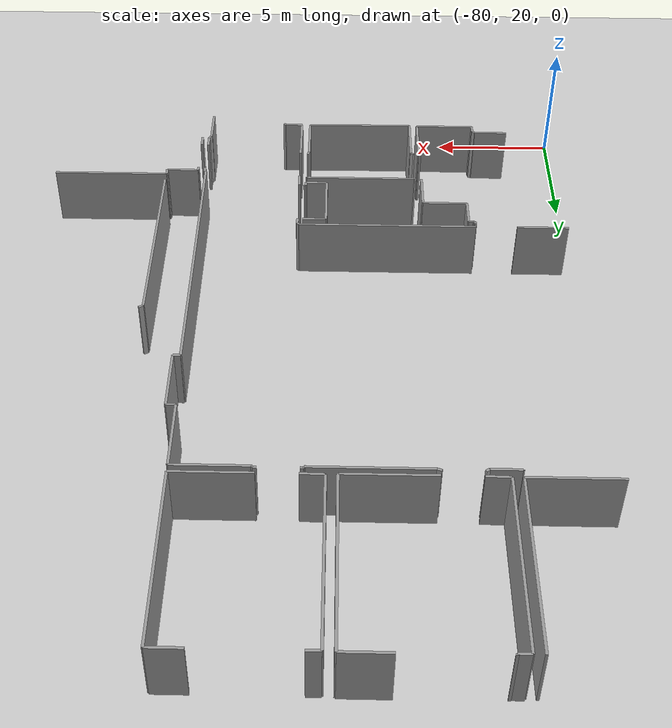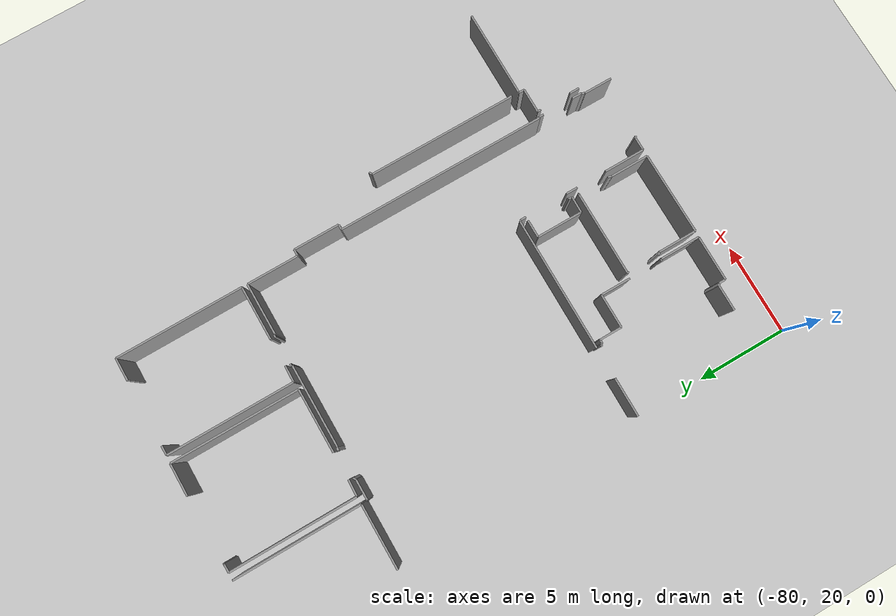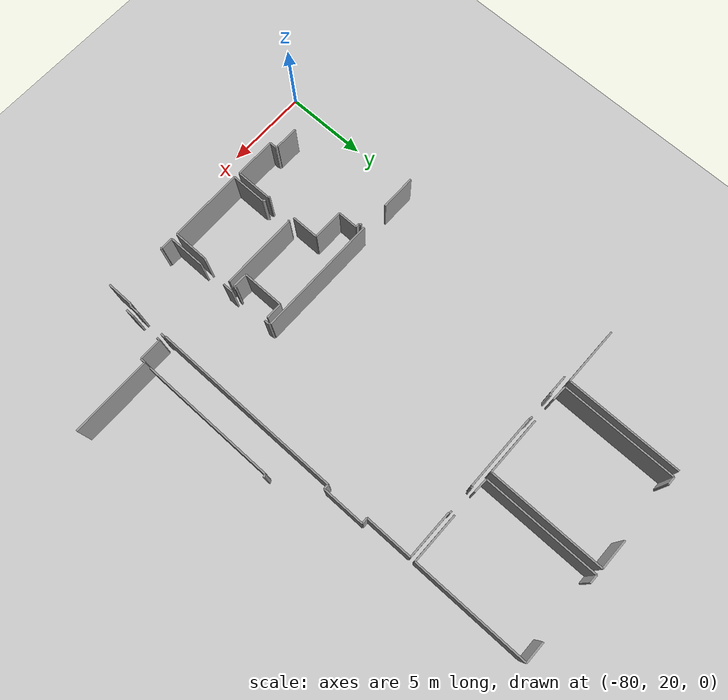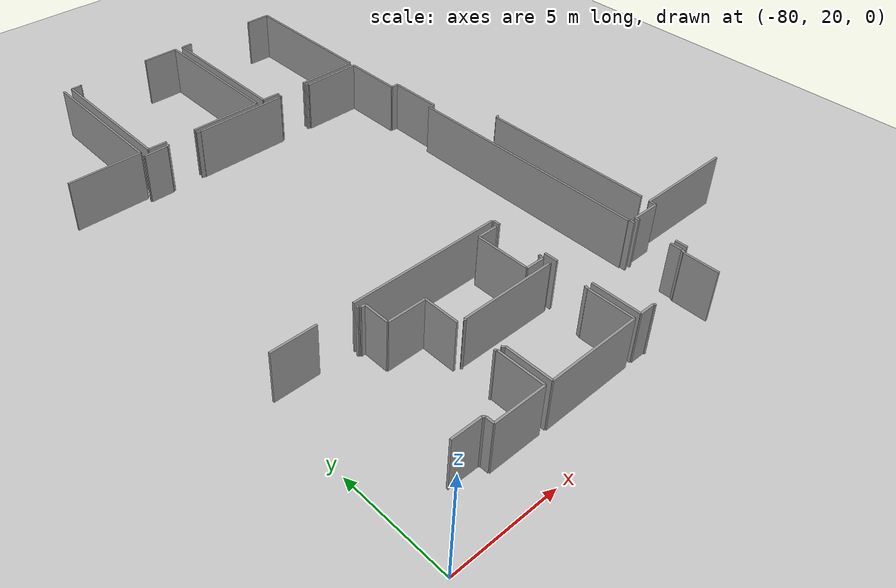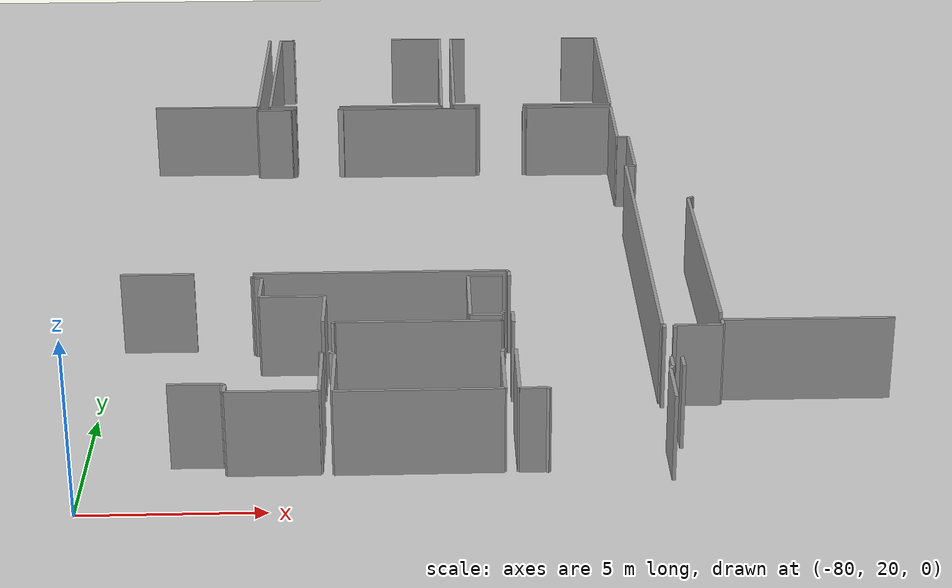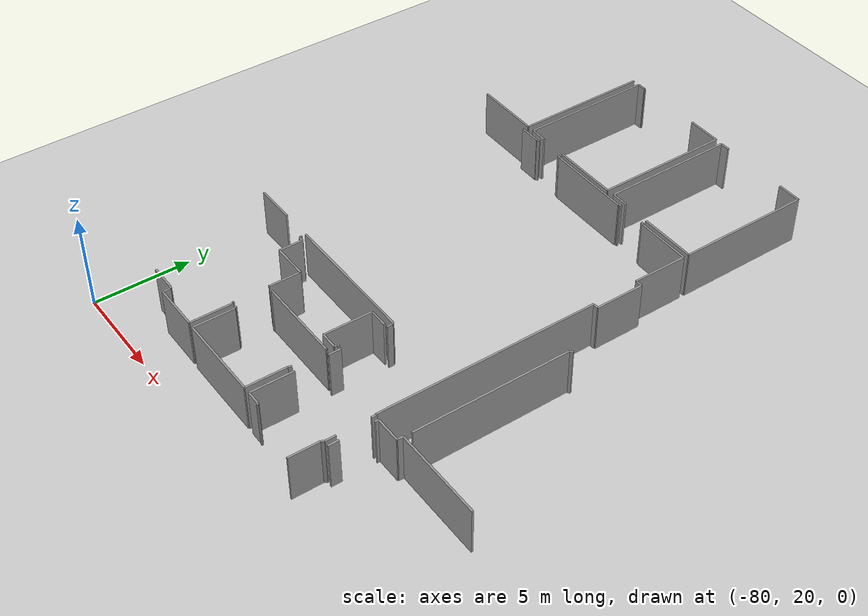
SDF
<sdf version="1.6">
 <world name="default">
  <model name="ground_plane">
   <static>1</static>
   <link name="link">
    <collision name="collision">
     <geometry><plane><normal>0 0 1</normal><size>100 100</size></plane></geometry>
     <surface><friction><ode><mu>100</mu><mu2>50</mu2></ode></friction></surface>
    </collision>
    <visual name="visual">
     <cast_shadows>0</cast_shadows>
     <geometry><plane><normal>0 0 1</normal><size>100 100</size></plane></geometry>
     <material>
      <script><uri>file://media/materials/scripts/gazebo.material</uri><name>Gazebo/Grey</name></script>
     </material>
    </visual>
   </link>
  </model>
  <model name="0510035739_A_40_1_102">
   <static>1</static>
   <link name="Wall_46">
    <collision name="Wall_46_Collision">
     <geometry><box><size>0.104180862052 0.1 2.5</size></box></geometry>
     <pose>0.052090431026 0 1.25 0 0 0</pose>
    </collision>
    <visual name="Wall_46_Visual">
     <pose>0.052090431026 0 1.25 0 0 0</pose>
     <geometry><box><size>0.104180862052 0.1 2.5</size></box></geometry>
     <material>
      <script><uri>file://media/materials/scripts/gazebo.material</uri><name>Gazebo/Grey</name></script>
      <ambient>1 1 1 1</ambient>
     </material>
    </visual>
    <pose>16.534954717 -20.8636822713 0 0 0 0.0</pose>
   </link>
   <link name="Wall_47">
    <collision name="Wall_47_Collision">
     <geometry><box><size>0.0876240013347 0.1 2.5</size></box></geometry>
     <pose>0.0438120006674 0 1.25 0 0 0</pose>
    </collision>
    <visual name="Wall_47_Visual">
     <pose>0.0438120006674 0 1.25 0 0 0</pose>
     <geometry><box><size>0.0876240013347 0.1 2.5</size></box></geometry>
     <material>
      <script><uri>file://media/materials/scripts/gazebo.material</uri><name>Gazebo/Grey</name></script>
      <ambient>1 1 1 1</ambient>
     </material>
    </visual>
    <pose>16.639135579 -20.8636822713 0 0 0 -1.57079632679</pose>
   </link>
   <link name="Wall_48">
    <collision name="Wall_48_Collision">
     <geometry><box><size>0.224409142953 0.1 2.5</size></box></geometry>
     <pose>0.112204571477 0 1.25 0 0 0</pose>
    </collision>
    <visual name="Wall_48_Visual">
     <pose>0.112204571477 0 1.25 0 0 0</pose>
     <geometry><box><size>0.224409142953 0.1 2.5</size></box></geometry>
     <material>
      <script><uri>file://media/materials/scripts/gazebo.material</uri><name>Gazebo/Grey</name></script>
      <ambient>1 1 1 1</ambient>
     </material>
    </visual>
    <pose>16.639135579 -20.9513062726 0 0 0 0.0</pose>
   </link>
   <link name="Wall_49">
    <collision name="Wall_49_Collision">
     <geometry><box><size>1.22444353028 0.1 2.5</size></box></geometry>
     <pose>0.61222176514 0 1.25 0 0 0</pose>
    </collision>
    <visual name="Wall_49_Visual">
     <pose>0.61222176514 0 1.25 0 0 0</pose>
     <geometry><box><size>1.22444353028 0.1 2.5</size></box></geometry>
     <material>
      <script><uri>file://media/materials/scripts/gazebo.material</uri><name>Gazebo/Grey</name></script>
      <ambient>1 1 1 1</ambient>
     </material>
    </visual>
    <pose>16.863544722 -20.9513062726 0 0 0 -1.57079632679</pose>
   </link>
   <link name="Wall_50">
    <collision name="Wall_50_Collision">
     <geometry><box><size>1.85131174913 0.1 2.5</size></box></geometry>
     <pose>0.925655874565 0 1.25 0 0 0</pose>
    </collision>
    <visual name="Wall_50_Visual">
     <pose>0.925655874565 0 1.25 0 0 0</pose>
     <geometry><box><size>1.85131174913 0.1 2.5</size></box></geometry>
     <material>
      <script><uri>file://media/materials/scripts/gazebo.material</uri><name>Gazebo/Grey</name></script>
      <ambient>1 1 1 1</ambient>
     </material>
    </visual>
    <pose>16.863544722 -22.1757498029 0 0 0 0.0</pose>
   </link>
   <link name="Wall_51">
    <collision name="Wall_51_Collision">
     <geometry><box><size>1.64804444371 0.1 2.5</size></box></geometry>
     <pose>0.824022221854 0 1.25 0 0 0</pose>
    </collision>
    <visual name="Wall_51_Visual">
     <pose>0.824022221854 0 1.25 0 0 0</pose>
     <geometry><box><size>1.64804444371 0.1 2.5</size></box></geometry>
     <material>
      <script><uri>file://media/materials/scripts/gazebo.material</uri><name>Gazebo/Grey</name></script>
      <ambient>1 1 1 1</ambient>
     </material>
    </visual>
    <pose>18.7148564711 -22.1757498029 0 0 0 -1.57079632679</pose>
   </link>
   <link name="Wall_52">
    <collision name="Wall_52_Collision">
     <geometry><box><size>0.0876240013347 0.1 2.5</size></box></geometry>
     <pose>0.0438120006674 0 1.25 0 0 0</pose>
    </collision>
    <visual name="Wall_52_Visual">
     <pose>0.0438120006674 0 1.25 0 0 0</pose>
     <geometry><box><size>0.0876240013347 0.1 2.5</size></box></geometry>
     <material>
      <script><uri>file://media/materials/scripts/gazebo.material</uri><name>Gazebo/Grey</name></script>
      <ambient>1 1 1 1</ambient>
     </material>
    </visual>
    <pose>18.7148564711 -25.6216145996 0 0 0 -1.57079632679</pose>
   </link>
   <link name="Wall_53">
    <collision name="Wall_53_Collision">
     <geometry><box><size>0.0486516984155 0.1 2.5</size></box></geometry>
     <pose>0.0243258492077 0 1.25 0 0 0</pose>
    </collision>
    <visual name="Wall_53_Visual">
     <pose>0.0243258492077 0 1.25 0 0 0</pose>
     <geometry><box><size>0.0486516984155 0.1 2.5</size></box></geometry>
     <material>
      <script><uri>file://media/materials/scripts/gazebo.material</uri><name>Gazebo/Grey</name></script>
      <ambient>1 1 1 1</ambient>
     </material>
    </visual>
    <pose>18.7148564711 -25.7092386009 0 0 0 0.0</pose>
   </link>
   <link name="Wall_54">
    <collision name="Wall_54_Collision">
     <geometry><box><size>2.17939231227 0.1 2.5</size></box></geometry>
     <pose>1.08969615613 0 1.25 0 0 0</pose>
    </collision>
    <visual name="Wall_54_Visual">
     <pose>1.08969615613 0 1.25 0 0 0</pose>
     <geometry><box><size>2.17939231227 0.1 2.5</size></box></geometry>
     <material>
      <script><uri>file://media/materials/scripts/gazebo.material</uri><name>Gazebo/Grey</name></script>
      <ambient>1 1 1 1</ambient>
     </material>
    </visual>
    <pose>18.7635081695 -25.7092386009 0 0 0 -1.57079632679</pose>
   </link>
   <link name="Wall_55">
    <collision name="Wall_55_Collision">
     <geometry><box><size>2.47435915397 0.1 2.5</size></box></geometry>
     <pose>1.23717957698 0 1.25 0 0 0</pose>
    </collision>
    <visual name="Wall_55_Visual">
     <pose>1.23717957698 0 1.25 0 0 0</pose>
     <geometry><box><size>2.47435915397 0.1 2.5</size></box></geometry>
     <material>
      <script><uri>file://media/materials/scripts/gazebo.material</uri><name>Gazebo/Grey</name></script>
      <ambient>1 1 1 1</ambient>
     </material>
    </visual>
    <pose>18.7635081695 -27.8886309132 0 0 0 3.14159265359</pose>
   </link>
   <link name="Wall_56">
    <collision name="Wall_56_Collision">
     <geometry><box><size>0.383609726774 0.1 2.5</size></box></geometry>
     <pose>0.191804863387 0 1.25 0 0 0</pose>
    </collision>
    <visual name="Wall_56_Visual">
     <pose>0.191804863387 0 1.25 0 0 0</pose>
     <geometry><box><size>0.383609726774 0.1 2.5</size></box></geometry>
     <material>
      <script><uri>file://media/materials/scripts/gazebo.material</uri><name>Gazebo/Grey</name></script>
      <ambient>1 1 1 1</ambient>
     </material>
    </visual>
    <pose>16.2891490156 -27.8886309132 0 0 0 1.57079632679</pose>
   </link>
   <link name="Wall_57">
    <collision name="Wall_57_Collision">
     <geometry><box><size>0.126815471802 0.1 2.5</size></box></geometry>
     <pose>0.0634077359011 0 1.25 0 0 0</pose>
    </collision>
    <visual name="Wall_57_Visual">
     <pose>0.0634077359011 0 1.25 0 0 0</pose>
     <geometry><box><size>0.126815471802 0.1 2.5</size></box></geometry>
     <material>
      <script><uri>file://media/materials/scripts/gazebo.material</uri><name>Gazebo/Grey</name></script>
      <ambient>1 1 1 1</ambient>
     </material>
    </visual>
    <pose>16.2891490156 -27.5050211864 0 0 0 2.60151762454</pose>
   </link>
   <link name="Wall_58">
    <collision name="Wall_58_Collision">
     <geometry><box><size>1.41167453959 0.1 2.5</size></box></geometry>
     <pose>0.705837269796 0 1.25 0 0 0</pose>
    </collision>
    <visual name="Wall_58_Visual">
     <pose>0.705837269796 0 1.25 0 0 0</pose>
     <geometry><box><size>1.41167453959 0.1 2.5</size></box></geometry>
     <material>
      <script><uri>file://media/materials/scripts/gazebo.material</uri><name>Gazebo/Grey</name></script>
      <ambient>1 1 1 1</ambient>
     </material>
    </visual>
    <pose>16.1803831767 -27.4398126273 0 0 0 3.13762298841</pose>
   </link>
   <link name="Wall_59">
    <collision name="Wall_59_Collision">
     <geometry><box><size>2.12539147424 0.1 2.5</size></box></geometry>
     <pose>1.06269573712 0 1.25 0 0 0</pose>
    </collision>
    <visual name="Wall_59_Visual">
     <pose>1.06269573712 0 1.25 0 0 0</pose>
     <geometry><box><size>2.12539147424 0.1 2.5</size></box></geometry>
     <material>
      <script><uri>file://media/materials/scripts/gazebo.material</uri><name>Gazebo/Grey</name></script>
      <ambient>1 1 1 1</ambient>
     </material>
    </visual>
    <pose>19.1076361515 -27.9186879834 0 0 0 1.57079632679</pose>
   </link>
   <link name="Wall_60">
    <collision name="Wall_60_Collision">
     <geometry><box><size>0.163736233212 0.1 2.5</size></box></geometry>
     <pose>0.0818681166061 0 1.25 0 0 0</pose>
    </collision>
    <visual name="Wall_60_Visual">
     <pose>0.0818681166061 0 1.25 0 0 0</pose>
     <geometry><box><size>0.163736233212 0.1 2.5</size></box></geometry>
     <material>
      <script><uri>file://media/materials/scripts/gazebo.material</uri><name>Gazebo/Grey</name></script>
      <ambient>1 1 1 1</ambient>
     </material>
    </visual>
    <pose>19.1076361515 -25.7932965092 0 0 0 2.40461476364</pose>
   </link>
   <link name="Wall_61">
    <collision name="Wall_61_Collision">
     <geometry><box><size>0.0948769660132 0.1 2.5</size></box></geometry>
     <pose>0.0474384830066 0 1.25 0 0 0</pose>
    </collision>
    <visual name="Wall_61_Visual">
     <pose>0.0474384830066 0 1.25 0 0 0</pose>
     <geometry><box><size>0.0948769660132 0.1 2.5</size></box></geometry>
     <material>
      <script><uri>file://media/materials/scripts/gazebo.material</uri><name>Gazebo/Grey</name></script>
      <ambient>1 1 1 1</ambient>
     </material>
    </visual>
    <pose>18.9863889869 -23.9424942019 0 0 0 0.867120509276</pose>
   </link>
   <link name="Wall_62">
    <collision name="Wall_62_Collision">
     <geometry><box><size>4.61248667491 0.1 2.5</size></box></geometry>
     <pose>2.30624333746 0 1.25 0 0 0</pose>
    </collision>
    <visual name="Wall_62_Visual">
     <pose>2.30624333746 0 1.25 0 0 0</pose>
     <geometry><box><size>4.61248667491 0.1 2.5</size></box></geometry>
     <material>
      <script><uri>file://media/materials/scripts/gazebo.material</uri><name>Gazebo/Grey</name></script>
      <ambient>1 1 1 1</ambient>
     </material>
    </visual>
    <pose>19.047776732 -23.8701534566 0 0 0 0.0</pose>
   </link>
   <link name="Wall_63">
    <collision name="Wall_63_Collision">
     <geometry><box><size>0.0433025587991 0.1 2.5</size></box></geometry>
     <pose>0.0216512793996 0 1.25 0 0 0</pose>
    </collision>
    <visual name="Wall_63_Visual">
     <pose>0.0216512793996 0 1.25 0 0 0</pose>
     <geometry><box><size>0.0433025587991 0.1 2.5</size></box></geometry>
     <material>
      <script><uri>file://media/materials/scripts/gazebo.material</uri><name>Gazebo/Grey</name></script>
      <ambient>1 1 1 1</ambient>
     </material>
    </visual>
    <pose>23.6602634069 -23.8701534566 0 0 0 -1.57079632679</pose>
   </link>
   <link name="Wall_64">
    <collision name="Wall_64_Collision">
     <geometry><box><size>0.197063315974 0.1 2.5</size></box></geometry>
     <pose>0.0985316579869 0 1.25 0 0 0</pose>
    </collision>
    <visual name="Wall_64_Visual">
     <pose>0.0985316579869 0 1.25 0 0 0</pose>
     <geometry><box><size>0.197063315974 0.1 2.5</size></box></geometry>
     <material>
      <script><uri>file://media/materials/scripts/gazebo.material</uri><name>Gazebo/Grey</name></script>
      <ambient>1 1 1 1</ambient>
     </material>
    </visual>
    <pose>23.6602634069 -25.5976708318 0 0 0 -1.85779605038</pose>
   </link>
   <link name="Wall_65">
    <collision name="Wall_65_Collision">
     <geometry><box><size>2.1019571483 0.1 2.5</size></box></geometry>
     <pose>1.05097857415 0 1.25 0 0 0</pose>
    </collision>
    <visual name="Wall_65_Visual">
     <pose>1.05097857415 0 1.25 0 0 0</pose>
     <geometry><box><size>2.1019571483 0.1 2.5</size></box></geometry>
     <material>
      <script><uri>file://media/materials/scripts/gazebo.material</uri><name>Gazebo/Grey</name></script>
      <ambient>1 1 1 1</ambient>
     </material>
    </visual>
    <pose>23.6044795223 -25.7866737649 0 0 0 -1.57079632679</pose>
   </link>
   <link name="Wall_66">
    <collision name="Wall_66_Collision">
     <geometry><box><size>4.496943821 0.1 2.5</size></box></geometry>
     <pose>2.2484719105 0 1.25 0 0 0</pose>
    </collision>
    <visual name="Wall_66_Visual">
     <pose>2.2484719105 0 1.25 0 0 0</pose>
     <geometry><box><size>4.496943821 0.1 2.5</size></box></geometry>
     <material>
      <script><uri>file://media/materials/scripts/gazebo.material</uri><name>Gazebo/Grey</name></script>
      <ambient>1 1 1 1</ambient>
     </material>
    </visual>
    <pose>23.6044795223 -27.8886309132 0 0 0 -3.13490871551</pose>
   </link>
   <link name="Wall_67">
    <collision name="Wall_67_Collision">
     <geometry><box><size>2.52173724771 0.1 2.5</size></box></geometry>
     <pose>1.26086862386 0 1.25 0 0 0</pose>
    </collision>
    <visual name="Wall_67_Visual">
     <pose>1.26086862386 0 1.25 0 0 0</pose>
     <geometry><box><size>2.52173724771 0.1 2.5</size></box></geometry>
     <material>
      <script><uri>file://media/materials/scripts/gazebo.material</uri><name>Gazebo/Grey</name></script>
      <ambient>1 1 1 1</ambient>
     </material>
    </visual>
    <pose>22.7967594403 -23.4916381485 0 0 0 1.57079632679</pose>
   </link>
   <link name="Wall_68">
    <collision name="Wall_68_Collision">
     <geometry><box><size>0.979911433531 0.1 2.5</size></box></geometry>
     <pose>0.489955716766 0 1.25 0 0 0</pose>
    </collision>
    <visual name="Wall_68_Visual">
     <pose>0.489955716766 0 1.25 0 0 0</pose>
     <geometry><box><size>0.979911433531 0.1 2.5</size></box></geometry>
     <material>
      <script><uri>file://media/materials/scripts/gazebo.material</uri><name>Gazebo/Grey</name></script>
      <ambient>1 1 1 1</ambient>
     </material>
    </visual>
    <pose>22.7967594403 -20.9699009008 0 0 0 0.0</pose>
   </link>
   <link name="Wall_69">
    <collision name="Wall_69_Collision">
     <geometry><box><size>0.088133443203 0.1 2.5</size></box></geometry>
     <pose>0.0440667216015 0 1.25 0 0 0</pose>
    </collision>
    <visual name="Wall_69_Visual">
     <pose>0.0440667216015 0 1.25 0 0 0</pose>
     <geometry><box><size>0.088133443203 0.1 2.5</size></box></geometry>
     <material>
      <script><uri>file://media/materials/scripts/gazebo.material</uri><name>Gazebo/Grey</name></script>
      <ambient>1 1 1 1</ambient>
     </material>
    </visual>
    <pose>23.7766708738 -23.3153712621 0 0 0 3.14159265359</pose>
   </link>
   <link name="Wall_70">
    <collision name="Wall_70_Collision">
     <geometry><box><size>0.187219886573 0.1 2.5</size></box></geometry>
     <pose>0.0936099432864 0 1.25 0 0 0</pose>
    </collision>
    <visual name="Wall_70_Visual">
     <pose>0.0936099432864 0 1.25 0 0 0</pose>
     <geometry><box><size>0.187219886573 0.1 2.5</size></box></geometry>
     <material>
      <script><uri>file://media/materials/scripts/gazebo.material</uri><name>Gazebo/Grey</name></script>
      <ambient>1 1 1 1</ambient>
     </material>
    </visual>
    <pose>23.6885374306 -23.3153712621 0 0 0 -1.57079632679</pose>
   </link>
   <link name="Wall_71">
    <collision name="Wall_71_Collision">
     <geometry><box><size>0.891845251289 0.1 2.5</size></box></geometry>
     <pose>0.445922625644 0 1.25 0 0 0</pose>
    </collision>
    <visual name="Wall_71_Visual">
     <pose>0.445922625644 0 1.25 0 0 0</pose>
     <geometry><box><size>0.891845251289 0.1 2.5</size></box></geometry>
     <material>
      <script><uri>file://media/materials/scripts/gazebo.material</uri><name>Gazebo/Grey</name></script>
      <ambient>1 1 1 1</ambient>
     </material>
    </visual>
    <pose>23.6885374306 -23.5025911487 0 0 0 3.12931106605</pose>
   </link>
   <link name="Wall_78">
    <collision name="Wall_78_Collision">
     <geometry><box><size>6.9638156177 0.1 2.5</size></box></geometry>
     <pose>3.48190780885 0 1.25 0 0 0</pose>
    </collision>
    <visual name="Wall_78_Visual">
     <pose>3.48190780885 0 1.25 0 0 0</pose>
     <geometry><box><size>6.9638156177 0.1 2.5</size></box></geometry>
     <material>
      <script><uri>file://media/materials/scripts/gazebo.material</uri><name>Gazebo/Grey</name></script>
      <ambient>1 1 1 1</ambient>
     </material>
    </visual>
    <pose>15.8915296374 -0.0473780937449 0 0 0 -1.57079632679</pose>
   </link>
   <link name="Wall_79">
    <collision name="Wall_79_Collision">
     <geometry><box><size>3.50088451844 0.1 2.5</size></box></geometry>
     <pose>1.75044225922 0 1.25 0 0 0</pose>
    </collision>
    <visual name="Wall_79_Visual">
     <pose>1.75044225922 0 1.25 0 0 0</pose>
     <geometry><box><size>3.50088451844 0.1 2.5</size></box></geometry>
     <material>
      <script><uri>file://media/materials/scripts/gazebo.material</uri><name>Gazebo/Grey</name></script>
      <ambient>1 1 1 1</ambient>
     </material>
    </visual>
    <pose>15.8915296374 -7.01119371145 0 0 0 3.14159265359</pose>
   </link>
   <link name="Wall_81">
    <collision name="Wall_81_Collision">
     <geometry><box><size>6.93452271028 0.1 2.5</size></box></geometry>
     <pose>3.46726135514 0 1.25 0 0 0</pose>
    </collision>
    <visual name="Wall_81_Visual">
     <pose>3.46726135514 0 1.25 0 0 0</pose>
     <geometry><box><size>6.93452271028 0.1 2.5</size></box></geometry>
     <material>
      <script><uri>file://media/materials/scripts/gazebo.material</uri><name>Gazebo/Grey</name></script>
      <ambient>1 1 1 1</ambient>
     </material>
    </visual>
    <pose>16.2988284111 -7.00075015315 0 0 0 1.57079632679</pose>
   </link>
   <link name="Wall_82">
    <collision name="Wall_82_Collision">
     <geometry><box><size>0.467922355965 0.1 2.5</size></box></geometry>
     <pose>0.233961177982 0 1.25 0 0 0</pose>
    </collision>
    <visual name="Wall_82_Visual">
     <pose>0.233961177982 0 1.25 0 0 0</pose>
     <geometry><box><size>0.467922355965 0.1 2.5</size></box></geometry>
     <material>
      <script><uri>file://media/materials/scripts/gazebo.material</uri><name>Gazebo/Grey</name></script>
      <ambient>1 1 1 1</ambient>
     </material>
    </visual>
    <pose>16.2988284111 -0.0662274428693 0 0 0 0.0</pose>
   </link>
   <link name="Wall_83">
    <collision name="Wall_83_Collision">
     <geometry><box><size>0.056548047373 0.1 2.5</size></box></geometry>
     <pose>0.0282740236865 0 1.25 0 0 0</pose>
    </collision>
    <visual name="Wall_83_Visual">
     <pose>0.0282740236865 0 1.25 0 0 0</pose>
     <geometry><box><size>0.056548047373 0.1 2.5</size></box></geometry>
     <material>
      <script><uri>file://media/materials/scripts/gazebo.material</uri><name>Gazebo/Grey</name></script>
      <ambient>1 1 1 1</ambient>
     </material>
    </visual>
    <pose>16.766750767 -0.0662274428693 0 0 0 1.57079632679</pose>
   </link>
   <link name="Wall_84">
    <collision name="Wall_84_Collision">
     <geometry><box><size>1.78508430626 0.1 2.5</size></box></geometry>
     <pose>0.892542153131 0 1.25 0 0 0</pose>
    </collision>
    <visual name="Wall_84_Visual">
     <pose>0.892542153131 0 1.25 0 0 0</pose>
     <geometry><box><size>1.78508430626 0.1 2.5</size></box></geometry>
     <material>
      <script><uri>file://media/materials/scripts/gazebo.material</uri><name>Gazebo/Grey</name></script>
      <ambient>1 1 1 1</ambient>
     </material>
    </visual>
    <pose>20.4003448921 -0.00967939549628 0 0 0 0.0</pose>
   </link>
   <link name="Wall_85">
    <collision name="Wall_85_Collision">
     <geometry><box><size>7.02036366508 0.1 2.5</size></box></geometry>
     <pose>3.51018183254 0 1.25 0 0 0</pose>
    </collision>
    <visual name="Wall_85_Visual">
     <pose>3.51018183254 0 1.25 0 0 0</pose>
     <geometry><box><size>7.02036366508 0.1 2.5</size></box></geometry>
     <material>
      <script><uri>file://media/materials/scripts/gazebo.material</uri><name>Gazebo/Grey</name></script>
      <ambient>1 1 1 1</ambient>
     </material>
    </visual>
    <pose>22.1854291984 -0.00967939549628 0 0 0 -1.57079632679</pose>
   </link>
   <link name="Wall_86">
    <collision name="Wall_86_Collision">
     <geometry><box><size>3.49222400668 0.1 2.5</size></box></geometry>
     <pose>1.74611200334 0 1.25 0 0 0</pose>
    </collision>
    <visual name="Wall_86_Visual">
     <pose>1.74611200334 0 1.25 0 0 0</pose>
     <geometry><box><size>3.49222400668 0.1 2.5</size></box></geometry>
     <material>
      <script><uri>file://media/materials/scripts/gazebo.material</uri><name>Gazebo/Grey</name></script>
      <ambient>1 1 1 1</ambient>
     </material>
    </visual>
    <pose>22.1854291984 -7.03004306057 0 0 0 3.14159265359</pose>
   </link>
   <link name="Wall_87">
    <collision name="Wall_87_Collision">
     <geometry><box><size>0.915680980621 0.1 2.5</size></box></geometry>
     <pose>0.457840490311 0 1.25 0 0 0</pose>
    </collision>
    <visual name="Wall_87_Visual">
     <pose>0.457840490311 0 1.25 0 0 0</pose>
     <geometry><box><size>0.915680980621 0.1 2.5</size></box></geometry>
     <material>
      <script><uri>file://media/materials/scripts/gazebo.material</uri><name>Gazebo/Grey</name></script>
      <ambient>1 1 1 1</ambient>
     </material>
    </visual>
    <pose>17.2140407273 -7.03004306057 0 0 0 3.10959689673</pose>
   </link>
   <link name="Wall_88">
    <collision name="Wall_88_Collision">
     <geometry><box><size>6.95286261754 0.1 2.5</size></box></geometry>
     <pose>3.47643130877 0 1.25 0 0 0</pose>
    </collision>
    <visual name="Wall_88_Visual">
     <pose>3.47643130877 0 1.25 0 0 0</pose>
     <geometry><box><size>6.95286261754 0.1 2.5</size></box></geometry>
     <material>
      <script><uri>file://media/materials/scripts/gazebo.material</uri><name>Gazebo/Grey</name></script>
      <ambient>1 1 1 1</ambient>
     </material>
    </visual>
    <pose>22.6103037165 -6.99183492046 0 0 0 1.57079632679</pose>
   </link>
   <link name="Wall_89">
    <collision name="Wall_89_Collision">
     <geometry><box><size>0.514791007842 0.1 2.5</size></box></geometry>
     <pose>0.257395503921 0 1.25 0 0 0</pose>
    </collision>
    <visual name="Wall_89_Visual">
     <pose>0.257395503921 0 1.25 0 0 0</pose>
     <geometry><box><size>0.514791007842 0.1 2.5</size></box></geometry>
     <material>
      <script><uri>file://media/materials/scripts/gazebo.material</uri><name>Gazebo/Grey</name></script>
      <ambient>1 1 1 1</ambient>
     </material>
    </visual>
    <pose>22.6103037165 -0.0389723029192 0 0 0 0.0</pose>
   </link>
   <link name="Wall_90">
    <collision name="Wall_90_Collision">
     <geometry><box><size>1.25679308891 0.1 2.5</size></box></geometry>
     <pose>0.628396544456 0 1.25 0 0 0</pose>
    </collision>
    <visual name="Wall_90_Visual">
     <pose>0.628396544456 0 1.25 0 0 0</pose>
     <geometry><box><size>1.25679308891 0.1 2.5</size></box></geometry>
     <material>
      <script><uri>file://media/materials/scripts/gazebo.material</uri><name>Gazebo/Grey</name></script>
      <ambient>1 1 1 1</ambient>
     </material>
    </visual>
    <pose>26.7400942213 -0.0389723029192 0 0 0 0.0</pose>
   </link>
   <link name="Wall_91">
    <collision name="Wall_91_Collision">
     <geometry><box><size>6.97451389694 0.1 2.5</size></box></geometry>
     <pose>3.48725694847 0 1.25 0 0 0</pose>
    </collision>
    <visual name="Wall_91_Visual">
     <pose>3.48725694847 0 1.25 0 0 0</pose>
     <geometry><box><size>6.97451389694 0.1 2.5</size></box></geometry>
     <material>
      <script><uri>file://media/materials/scripts/gazebo.material</uri><name>Gazebo/Grey</name></script>
      <ambient>1 1 1 1</ambient>
     </material>
    </visual>
    <pose>27.9968873102 -0.0389723029192 0 0 0 -1.57079632679</pose>
   </link>
   <link name="Wall_92">
    <collision name="Wall_92_Collision">
     <geometry><box><size>2.98991432461 0.1 2.5</size></box></geometry>
     <pose>1.49495716231 0 1.25 0 0 0</pose>
    </collision>
    <visual name="Wall_92_Visual">
     <pose>1.49495716231 0 1.25 0 0 0</pose>
     <geometry><box><size>2.98991432461 0.1 2.5</size></box></geometry>
     <material>
      <script><uri>file://media/materials/scripts/gazebo.material</uri><name>Gazebo/Grey</name></script>
      <ambient>1 1 1 1</ambient>
     </material>
    </visual>
    <pose>27.9968873102 -7.01348619986 0 0 0 3.14159265359</pose>
   </link>
   <link name="Wall_93">
    <collision name="Wall_93_Collision">
     <geometry><box><size>0.900698769813 0.1 2.5</size></box></geometry>
     <pose>0.450349384906 0 1.25 0 0 0</pose>
    </collision>
    <visual name="Wall_93_Visual">
     <pose>0.450349384906 0 1.25 0 0 0</pose>
     <geometry><box><size>0.900698769813 0.1 2.5</size></box></geometry>
     <material>
      <script><uri>file://media/materials/scripts/gazebo.material</uri><name>Gazebo/Grey</name></script>
      <ambient>1 1 1 1</ambient>
     </material>
    </visual>
    <pose>23.5107422186 -7.01348619986 0 0 0 3.11755202443</pose>
   </link>
   <link name="Wall_103">
    <collision name="Wall_103_Collision">
     <geometry><box><size>0.0394817447875 0.1 2.5</size></box></geometry>
     <pose>0.0197408723937 0 1.25 0 0 0</pose>
    </collision>
    <visual name="Wall_103_Visual">
     <pose>0.0197408723937 0 1.25 0 0 0</pose>
     <geometry><box><size>0.0394817447875 0.1 2.5</size></box></geometry>
     <material>
      <script><uri>file://media/materials/scripts/gazebo.material</uri><name>Gazebo/Grey</name></script>
      <ambient>1 1 1 1</ambient>
     </material>
    </visual>
    <pose>15.8999354282 -7.30641527409 0 0 0 -1.57079632679</pose>
   </link>
   <link name="Wall_104">
    <collision name="Wall_104_Collision">
     <geometry><box><size>1.13325343587 0.1 2.5</size></box></geometry>
     <pose>0.566626717933 0 1.25 0 0 0</pose>
    </collision>
    <visual name="Wall_104_Visual">
     <pose>0.566626717933 0 1.25 0 0 0</pose>
     <geometry><box><size>1.13325343587 0.1 2.5</size></box></geometry>
     <material>
      <script><uri>file://media/materials/scripts/gazebo.material</uri><name>Gazebo/Grey</name></script>
      <ambient>1 1 1 1</ambient>
     </material>
    </visual>
    <pose>15.8999354282 -7.34589701887 0 0 0 0.0</pose>
   </link>
   <link name="Wall_105">
    <collision name="Wall_105_Collision">
     <geometry><box><size>0.157966414887 0.1 2.5</size></box></geometry>
     <pose>0.0789832074434 0 1.25 0 0 0</pose>
    </collision>
    <visual name="Wall_105_Visual">
     <pose>0.0789832074434 0 1.25 0 0 0</pose>
     <geometry><box><size>0.157966414887 0.1 2.5</size></box></geometry>
     <material>
      <script><uri>file://media/materials/scripts/gazebo.material</uri><name>Gazebo/Grey</name></script>
      <ambient>1 1 1 1</ambient>
     </material>
    </visual>
    <pose>17.0331888641 -7.34589701887 0 0 0 0.588002603548</pose>
   </link>
   <link name="Wall_106">
    <collision name="Wall_106_Collision">
     <geometry><box><size>0.195821429344 0.1 2.5</size></box></geometry>
     <pose>0.0979107146721 0 1.25 0 0 0</pose>
    </collision>
    <visual name="Wall_106_Visual">
     <pose>0.0979107146721 0 1.25 0 0 0</pose>
     <geometry><box><size>0.195821429344 0.1 2.5</size></box></geometry>
     <material>
      <script><uri>file://media/materials/scripts/gazebo.material</uri><name>Gazebo/Grey</name></script>
      <ambient>1 1 1 1</ambient>
     </material>
    </visual>
    <pose>18.6435346096 -7.25827301754 0 0 0 -0.314757661391</pose>
   </link>
   <link name="Wall_107">
    <collision name="Wall_107_Collision">
     <geometry><box><size>4.51645688275 0.1 2.5</size></box></geometry>
     <pose>2.25822844138 0 1.25 0 0 0</pose>
    </collision>
    <visual name="Wall_107_Visual">
     <pose>2.25822844138 0 1.25 0 0 0</pose>
     <geometry><box><size>4.51645688275 0.1 2.5</size></box></geometry>
     <material>
      <script><uri>file://media/materials/scripts/gazebo.material</uri><name>Gazebo/Grey</name></script>
      <ambient>1 1 1 1</ambient>
     </material>
    </visual>
    <pose>18.8297356124 -7.31889659986 0 0 0 0.0</pose>
   </link>
   <link name="Wall_108">
    <collision name="Wall_108_Collision">
     <geometry><box><size>0.0560386055048 0.1 2.5</size></box></geometry>
     <pose>0.0280193027524 0 1.25 0 0 0</pose>
    </collision>
    <visual name="Wall_108_Visual">
     <pose>0.0280193027524 0 1.25 0 0 0</pose>
     <geometry><box><size>0.0560386055048 0.1 2.5</size></box></geometry>
     <material>
      <script><uri>file://media/materials/scripts/gazebo.material</uri><name>Gazebo/Grey</name></script>
      <ambient>1 1 1 1</ambient>
     </material>
    </visual>
    <pose>23.3461924952 -7.31889659986 0 0 0 1.57079632679</pose>
   </link>
   <link name="Wall_109">
    <collision name="Wall_109_Collision">
     <geometry><box><size>0.126086862386 0.1 2.5</size></box></geometry>
     <pose>0.0630434311929 0 1.25 0 0 0</pose>
    </collision>
    <visual name="Wall_109_Visual">
     <pose>0.0630434311929 0 1.25 0 0 0</pose>
     <geometry><box><size>0.126086862386 0.1 2.5</size></box></geometry>
     <material>
      <script><uri>file://media/materials/scripts/gazebo.material</uri><name>Gazebo/Grey</name></script>
      <ambient>1 1 1 1</ambient>
     </material>
    </visual>
    <pose>23.3461924952 -7.26285799435 0 0 0 0.0</pose>
   </link>
   <link name="Wall_110">
    <collision name="Wall_110_Collision">
     <geometry><box><size>0.147483420851 0.1 2.5</size></box></geometry>
     <pose>0.0737417104256 0 1.25 0 0 0</pose>
    </collision>
    <visual name="Wall_110_Visual">
     <pose>0.0737417104256 0 1.25 0 0 0</pose>
     <geometry><box><size>0.147483420851 0.1 2.5</size></box></geometry>
     <material>
      <script><uri>file://media/materials/scripts/gazebo.material</uri><name>Gazebo/Grey</name></script>
      <ambient>1 1 1 1</ambient>
     </material>
    </visual>
    <pose>24.9595948918 -7.26285799435 0 0 0 0.0</pose>
   </link>
   <link name="Wall_111">
    <collision name="Wall_111_Collision">
     <geometry><box><size>0.0547650008342 0.1 2.5</size></box></geometry>
     <pose>0.0273825004171 0 1.25 0 0 0</pose>
    </collision>
    <visual name="Wall_111_Visual">
     <pose>0.0273825004171 0 1.25 0 0 0</pose>
     <geometry><box><size>0.0547650008342 0.1 2.5</size></box></geometry>
     <material>
      <script><uri>file://media/materials/scripts/gazebo.material</uri><name>Gazebo/Grey</name></script>
      <ambient>1 1 1 1</ambient>
     </material>
    </visual>
    <pose>25.1070783127 -7.26285799435 0 0 0 -1.57079632679</pose>
   </link>
   <link name="Wall_112">
    <collision name="Wall_112_Collision">
     <geometry><box><size>2.88267681135 0.1 2.5</size></box></geometry>
     <pose>1.44133840568 0 1.25 0 0 0</pose>
    </collision>
    <visual name="Wall_112_Visual">
     <pose>1.44133840568 0 1.25 0 0 0</pose>
     <geometry><box><size>2.88267681135 0.1 2.5</size></box></geometry>
     <material>
      <script><uri>file://media/materials/scripts/gazebo.material</uri><name>Gazebo/Grey</name></script>
      <ambient>1 1 1 1</ambient>
     </material>
    </visual>
    <pose>25.1070783127 -7.31762299519 0 0 0 0.0</pose>
   </link>
   <link name="Wall_113">
    <collision name="Wall_113_Collision">
     <geometry><box><size>2.83657232228 0.1 2.5</size></box></geometry>
     <pose>1.41828616114 0 1.25 0 0 0</pose>
    </collision>
    <visual name="Wall_113_Visual">
     <pose>1.41828616114 0 1.25 0 0 0</pose>
     <geometry><box><size>2.83657232228 0.1 2.5</size></box></geometry>
     <material>
      <script><uri>file://media/materials/scripts/gazebo.material</uri><name>Gazebo/Grey</name></script>
      <ambient>1 1 1 1</ambient>
     </material>
    </visual>
    <pose>27.989755124 -7.31762299519 0 0 0 -1.57079632679</pose>
   </link>
   <link name="Wall_114">
    <collision name="Wall_114_Collision">
     <geometry><box><size>0.365269819517 0.1 2.5</size></box></geometry>
     <pose>0.182634909759 0 1.25 0 0 0</pose>
    </collision>
    <visual name="Wall_114_Visual">
     <pose>0.182634909759 0 1.25 0 0 0</pose>
     <geometry><box><size>0.365269819517 0.1 2.5</size></box></geometry>
     <material>
      <script><uri>file://media/materials/scripts/gazebo.material</uri><name>Gazebo/Grey</name></script>
      <ambient>1 1 1 1</ambient>
     </material>
    </visual>
    <pose>27.989755124 -10.1541953175 0 0 0 0.0</pose>
   </link>
   <link name="Wall_115">
    <collision name="Wall_115_Collision">
     <geometry><box><size>2.53269024788 0.1 2.5</size></box></geometry>
     <pose>1.26634512394 0 1.25 0 0 0</pose>
    </collision>
    <visual name="Wall_115_Visual">
     <pose>1.26634512394 0 1.25 0 0 0</pose>
     <geometry><box><size>2.53269024788 0.1 2.5</size></box></geometry>
     <material>
      <script><uri>file://media/materials/scripts/gazebo.material</uri><name>Gazebo/Grey</name></script>
      <ambient>1 1 1 1</ambient>
     </material>
    </visual>
    <pose>28.3550249435 -10.1541953175 0 0 0 -1.57079632679</pose>
   </link>
   <link name="Wall_116">
    <collision name="Wall_116_Collision">
     <geometry><box><size>0.291146027691 0.1 2.5</size></box></geometry>
     <pose>0.145573013845 0 1.25 0 0 0</pose>
    </collision>
    <visual name="Wall_116_Visual">
     <pose>0.145573013845 0 1.25 0 0 0</pose>
     <geometry><box><size>0.291146027691 0.1 2.5</size></box></geometry>
     <material>
      <script><uri>file://media/materials/scripts/gazebo.material</uri><name>Gazebo/Grey</name></script>
      <ambient>1 1 1 1</ambient>
     </material>
    </visual>
    <pose>28.3550249435 -12.6868855653 0 0 0 3.14159265359</pose>
   </link>
   <link name="Wall_117">
    <collision name="Wall_117_Collision">
     <geometry><box><size>11.5452263387 0.1 2.5</size></box></geometry>
     <pose>5.77261316933 0 1.25 0 0 0</pose>
    </collision>
    <visual name="Wall_117_Visual">
     <pose>5.77261316933 0 1.25 0 0 0</pose>
     <geometry><box><size>11.5452263387 0.1 2.5</size></box></geometry>
     <material>
      <script><uri>file://media/materials/scripts/gazebo.material</uri><name>Gazebo/Grey</name></script>
      <ambient>1 1 1 1</ambient>
     </material>
    </visual>
    <pose>28.0638789159 -12.6868855653 0 0 0 -1.57079632679</pose>
   </link>
   <link name="Wall_118">
    <collision name="Wall_118_Collision">
     <geometry><box><size>0.0494158612179 0.1 2.5</size></box></geometry>
     <pose>0.0247079306089 0 1.25 0 0 0</pose>
    </collision>
    <visual name="Wall_118_Visual">
     <pose>0.0247079306089 0 1.25 0 0 0</pose>
     <geometry><box><size>0.0494158612179 0.1 2.5</size></box></geometry>
     <material>
      <script><uri>file://media/materials/scripts/gazebo.material</uri><name>Gazebo/Grey</name></script>
      <ambient>1 1 1 1</ambient>
     </material>
    </visual>
    <pose>28.0638789159 -24.232111904 0 0 0 0.0</pose>
   </link>
   <link name="Wall_119">
    <collision name="Wall_119_Collision">
     <geometry><box><size>0.253447329442 0.1 2.5</size></box></geometry>
     <pose>0.126723664721 0 1.25 0 0 0</pose>
    </collision>
    <visual name="Wall_119_Visual">
     <pose>0.126723664721 0 1.25 0 0 0</pose>
     <geometry><box><size>0.253447329442 0.1 2.5</size></box></geometry>
     <material>
      <script><uri>file://media/materials/scripts/gazebo.material</uri><name>Gazebo/Grey</name></script>
      <ambient>1 1 1 1</ambient>
     </material>
    </visual>
    <pose>28.1132947771 -24.232111904 0 0 0 -1.57079632679</pose>
   </link>
   <link name="Wall_120">
    <collision name="Wall_120_Collision">
     <geometry><box><size>0.537715891912 0.1 2.5</size></box></geometry>
     <pose>0.268857945956 0 1.25 0 0 0</pose>
    </collision>
    <visual name="Wall_120_Visual">
     <pose>0.268857945956 0 1.25 0 0 0</pose>
     <geometry><box><size>0.537715891912 0.1 2.5</size></box></geometry>
     <material>
      <script><uri>file://media/materials/scripts/gazebo.material</uri><name>Gazebo/Grey</name></script>
      <ambient>1 1 1 1</ambient>
     </material>
    </visual>
    <pose>28.1132947771 -26.2087463527 0 0 0 -1.57079632679</pose>
   </link>
   <link name="Wall_121">
    <collision name="Wall_121_Collision">
     <geometry><box><size>0.181700496562 0.1 2.5</size></box></geometry>
     <pose>0.090850248281 0 1.25 0 0 0</pose>
    </collision>
    <visual name="Wall_121_Visual">
     <pose>0.090850248281 0 1.25 0 0 0</pose>
     <geometry><box><size>0.181700496562 0.1 2.5</size></box></geometry>
     <material>
      <script><uri>file://media/materials/scripts/gazebo.material</uri><name>Gazebo/Grey</name></script>
      <ambient>1 1 1 1</ambient>
     </material>
    </visual>
    <pose>28.1132947771 -26.7464622446 0 0 0 -2.08524763985</pose>
   </link>
   <link name="Wall_122">
    <collision name="Wall_122_Collision">
     <geometry><box><size>1.56551486106 0.1 2.5</size></box></geometry>
     <pose>0.782757430528 0 1.25 0 0 0</pose>
    </collision>
    <visual name="Wall_122_Visual">
     <pose>0.782757430528 0 1.25 0 0 0</pose>
     <geometry><box><size>1.56551486106 0.1 2.5</size></box></geometry>
     <material>
      <script><uri>file://media/materials/scripts/gazebo.material</uri><name>Gazebo/Grey</name></script>
      <ambient>1 1 1 1</ambient>
     </material>
    </visual>
    <pose>28.0238877292 -26.9046439447 0 0 0 -1.57079632679</pose>
   </link>
   <link name="Wall_126">
    <collision name="Wall_126_Collision">
     <geometry><box><size>0.109088682318 0.1 2.5</size></box></geometry>
     <pose>0.054544341159 0 1.25 0 0 0</pose>
    </collision>
    <visual name="Wall_126_Visual">
     <pose>0.054544341159 0 1.25 0 0 0</pose>
     <geometry><box><size>0.109088682318 0.1 2.5</size></box></geometry>
     <material>
      <script><uri>file://media/materials/scripts/gazebo.material</uri><name>Gazebo/Grey</name></script>
      <ambient>1 1 1 1</ambient>
     </material>
    </visual>
    <pose>24.7912243544 -27.9525658676 0 0 0 2.48034469261</pose>
   </link>
   <link name="Wall_127">
    <collision name="Wall_127_Collision">
     <geometry><box><size>0.72773770876 0.1 2.5</size></box></geometry>
     <pose>0.36386885438 0 1.25 0 0 0</pose>
    </collision>
    <visual name="Wall_127_Visual">
     <pose>0.36386885438 0 1.25 0 0 0</pose>
     <geometry><box><size>0.72773770876 0.1 2.5</size></box></geometry>
     <material>
      <script><uri>file://media/materials/scripts/gazebo.material</uri><name>Gazebo/Grey</name></script>
      <ambient>1 1 1 1</ambient>
     </material>
    </visual>
    <pose>24.7051286786 -27.885574262 0 0 0 3.14159265359</pose>
   </link>
   <link name="Wall_128">
    <collision name="Wall_128_Collision">
     <geometry><box><size>2.23110066189 0.1 2.5</size></box></geometry>
     <pose>1.11555033095 0 1.25 0 0 0</pose>
    </collision>
    <visual name="Wall_128_Visual">
     <pose>1.11555033095 0 1.25 0 0 0</pose>
     <geometry><box><size>2.23110066189 0.1 2.5</size></box></geometry>
     <material>
      <script><uri>file://media/materials/scripts/gazebo.material</uri><name>Gazebo/Grey</name></script>
      <ambient>1 1 1 1</ambient>
     </material>
    </visual>
    <pose>23.9773909699 -27.885574262 0 0 0 1.57079632679</pose>
   </link>
   <link name="Wall_129">
    <collision name="Wall_129_Collision">
     <geometry><box><size>0.628905986324 0.1 2.5</size></box></geometry>
     <pose>0.314452993162 0 1.25 0 0 0</pose>
    </collision>
    <visual name="Wall_129_Visual">
     <pose>0.314452993162 0 1.25 0 0 0</pose>
     <geometry><box><size>0.628905986324 0.1 2.5</size></box></geometry>
     <material>
      <script><uri>file://media/materials/scripts/gazebo.material</uri><name>Gazebo/Grey</name></script>
      <ambient>1 1 1 1</ambient>
     </material>
    </visual>
    <pose>23.9773909699 -23.9779004118 0 0 0 1.57079632679</pose>
   </link>
   <link name="Wall_130">
    <collision name="Wall_130_Collision">
     <geometry><box><size>0.284778004338 0.1 2.5</size></box></geometry>
     <pose>0.142389002169 0 1.25 0 0 0</pose>
    </collision>
    <visual name="Wall_130_Visual">
     <pose>0.142389002169 0 1.25 0 0 0</pose>
     <geometry><box><size>0.284778004338 0.1 2.5</size></box></geometry>
     <material>
      <script><uri>file://media/materials/scripts/gazebo.material</uri><name>Gazebo/Grey</name></script>
      <ambient>1 1 1 1</ambient>
     </material>
    </visual>
    <pose>23.9773909699 -20.9678631333 0 0 0 1.57079632679</pose>
   </link>
   <link name="Wall_131">
    <collision name="Wall_131_Collision">
     <geometry><box><size>0.109701655698 0.1 2.5</size></box></geometry>
     <pose>0.0548508278492 0 1.25 0 0 0</pose>
    </collision>
    <visual name="Wall_131_Visual">
     <pose>0.0548508278492 0 1.25 0 0 0</pose>
     <geometry><box><size>0.109701655698 0.1 2.5</size></box></geometry>
     <material>
      <script><uri>file://media/materials/scripts/gazebo.material</uri><name>Gazebo/Grey</name></script>
      <ambient>1 1 1 1</ambient>
     </material>
    </visual>
    <pose>23.9773909699 -20.683085129 0 0 0 2.29705301381</pose>
   </link>
   <link name="Wall_132">
    <collision name="Wall_132_Collision">
     <geometry><box><size>7.31354746024 0.1 2.5</size></box></geometry>
     <pose>3.65677373012 0 1.25 0 0 0</pose>
    </collision>
    <visual name="Wall_132_Visual">
     <pose>3.65677373012 0 1.25 0 0 0</pose>
     <geometry><box><size>7.31354746024 0.1 2.5</size></box></geometry>
     <material>
      <script><uri>file://media/materials/scripts/gazebo.material</uri><name>Gazebo/Grey</name></script>
      <ambient>1 1 1 1</ambient>
     </material>
    </visual>
    <pose>23.9045407827 -20.6010649882 0 0 0 3.14159265359</pose>
   </link>
   <link name="Wall_133">
    <collision name="Wall_133_Collision">
     <geometry><box><size>2.12131593929 0.1 2.5</size></box></geometry>
     <pose>1.06065796964 0 1.25 0 0 0</pose>
    </collision>
    <visual name="Wall_133_Visual">
     <pose>1.06065796964 0 1.25 0 0 0</pose>
     <geometry><box><size>2.12131593929 0.1 2.5</size></box></geometry>
     <material>
      <script><uri>file://media/materials/scripts/gazebo.material</uri><name>Gazebo/Grey</name></script>
      <ambient>1 1 1 1</ambient>
     </material>
    </visual>
    <pose>14.8902216454 -20.6010649882 0 0 0 3.14159265359</pose>
   </link>
   <link name="Wall_203">
    <collision name="Wall_203_Collision">
     <geometry><box><size>0.544593357133 0.1 2.5</size></box></geometry>
     <pose>0.272296678566 0 1.25 0 0 0</pose>
    </collision>
    <visual name="Wall_203_Visual">
     <pose>0.272296678566 0 1.25 0 0 0</pose>
     <geometry><box><size>0.544593357133 0.1 2.5</size></box></geometry>
     <material>
      <script><uri>file://media/materials/scripts/gazebo.material</uri><name>Gazebo/Grey</name></script>
      <ambient>1 1 1 1</ambient>
     </material>
    </visual>
    <pose>28.4057144094 -26.7821231754 0 0 0 1.57079632679</pose>
   </link>
   <link name="Wall_204">
    <collision name="Wall_204_Collision">
     <geometry><box><size>0.190021816848 0.1 2.5</size></box></geometry>
     <pose>0.095010908424 0 1.25 0 0 0</pose>
    </collision>
    <visual name="Wall_204_Visual">
     <pose>0.095010908424 0 1.25 0 0 0</pose>
     <geometry><box><size>0.190021816848 0.1 2.5</size></box></geometry>
     <material>
      <script><uri>file://media/materials/scripts/gazebo.material</uri><name>Gazebo/Grey</name></script>
      <ambient>1 1 1 1</ambient>
     </material>
    </visual>
    <pose>28.4057144094 -24.502625536 0 0 0 1.57079632679</pose>
   </link>
   <link name="Wall_205">
    <collision name="Wall_205_Collision">
     <geometry><box><size>1.34237932277 0.1 2.5</size></box></geometry>
     <pose>0.671189661387 0 1.25 0 0 0</pose>
    </collision>
    <visual name="Wall_205_Visual">
     <pose>0.671189661387 0 1.25 0 0 0</pose>
     <geometry><box><size>1.34237932277 0.1 2.5</size></box></geometry>
     <material>
      <script><uri>file://media/materials/scripts/gazebo.material</uri><name>Gazebo/Grey</name></script>
      <ambient>1 1 1 1</ambient>
     </material>
    </visual>
    <pose>28.4057144094 -24.3126037192 0 0 0 0.0</pose>
   </link>
   <link name="Wall_206">
    <collision name="Wall_206_Collision">
     <geometry><box><size>0.303882074396 0.1 2.5</size></box></geometry>
     <pose>0.151941037198 0 1.25 0 0 0</pose>
    </collision>
    <visual name="Wall_206_Visual">
     <pose>0.151941037198 0 1.25 0 0 0</pose>
     <geometry><box><size>0.303882074396 0.1 2.5</size></box></geometry>
     <material>
      <script><uri>file://media/materials/scripts/gazebo.material</uri><name>Gazebo/Grey</name></script>
      <ambient>1 1 1 1</ambient>
     </material>
    </visual>
    <pose>29.7480937322 -24.3126037192 0 0 0 1.57079632679</pose>
   </link>
   <link name="Wall_207">
    <collision name="Wall_207_Collision">
     <geometry><box><size>4.81244260819 0.1 2.5</size></box></geometry>
     <pose>2.40622130409 0 1.25 0 0 0</pose>
    </collision>
    <visual name="Wall_207_Visual">
     <pose>2.40622130409 0 1.25 0 0 0</pose>
     <geometry><box><size>4.81244260819 0.1 2.5</size></box></geometry>
     <material>
      <script><uri>file://media/materials/scripts/gazebo.material</uri><name>Gazebo/Grey</name></script>
      <ambient>1 1 1 1</ambient>
     </material>
    </visual>
    <pose>29.7480937322 -24.0087216448 0 0 0 0.0</pose>
   </link>
   <link name="Wall_295">
    <collision name="Wall_295_Collision">
     <geometry><box><size>8.18571193864 0.1 2.5</size></box></geometry>
     <pose>4.09285596932 0 1.25 0 0 0</pose>
    </collision>
    <visual name="Wall_295_Visual">
     <pose>4.09285596932 0 1.25 0 0 0</pose>
     <geometry><box><size>8.18571193864 0.1 2.5</size></box></geometry>
     <material>
      <script><uri>file://media/materials/scripts/gazebo.material</uri><name>Gazebo/Grey</name></script>
      <ambient>1 1 1 1</ambient>
     </material>
    </visual>
    <pose>29.7707638953 -23.5955642897 0 0 0 1.57079632679</pose>
   </link>
   <link name="Wall_296">
    <collision name="Wall_296_Collision">
     <geometry><box><size>0.189378290926 0.1 2.5</size></box></geometry>
     <pose>0.0946891454628 0 1.25 0 0 0</pose>
    </collision>
    <visual name="Wall_296_Visual">
     <pose>0.0946891454628 0 1.25 0 0 0</pose>
     <geometry><box><size>0.189378290926 0.1 2.5</size></box></geometry>
     <material>
      <script><uri>file://media/materials/scripts/gazebo.material</uri><name>Gazebo/Grey</name></script>
      <ambient>1 1 1 1</ambient>
     </material>
    </visual>
    <pose>29.7707638953 -15.409852351 0 0 0 0.487109007348</pose>
   </link>
   <pose>-92.5 49.8157534709 0 0 0 0</pose>
  </model>
 </world>
</sdf>
